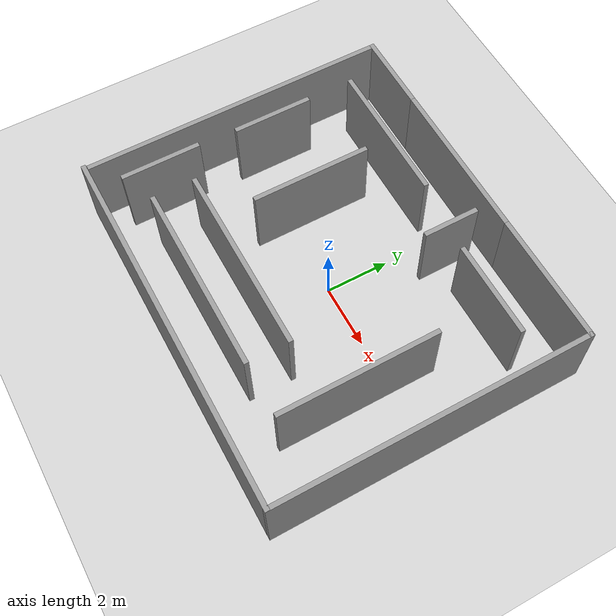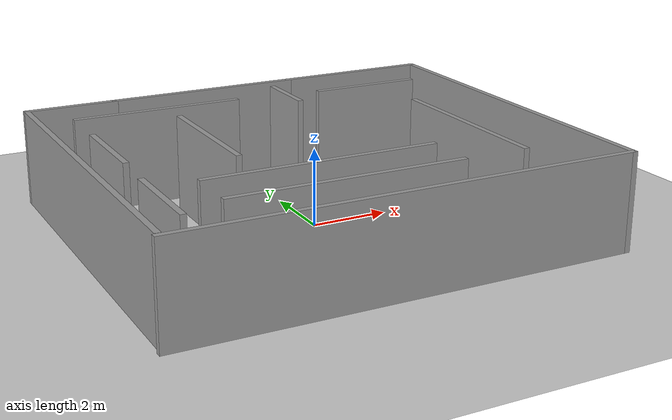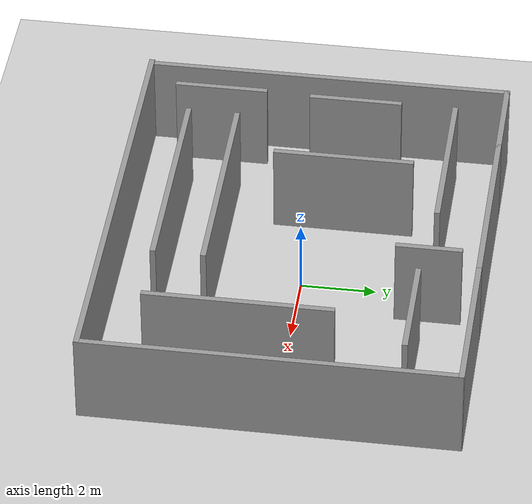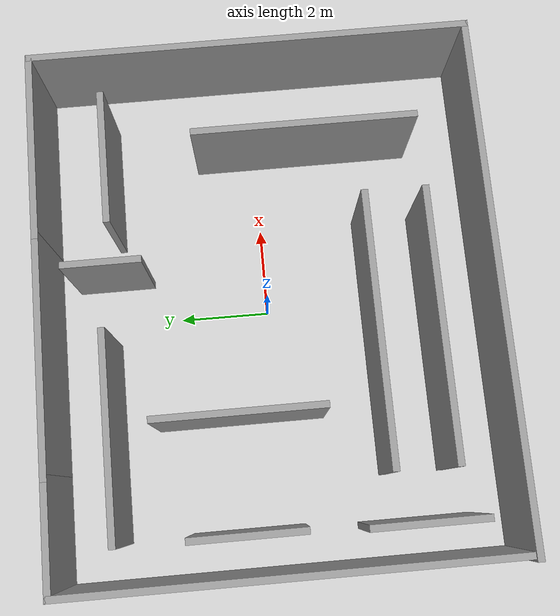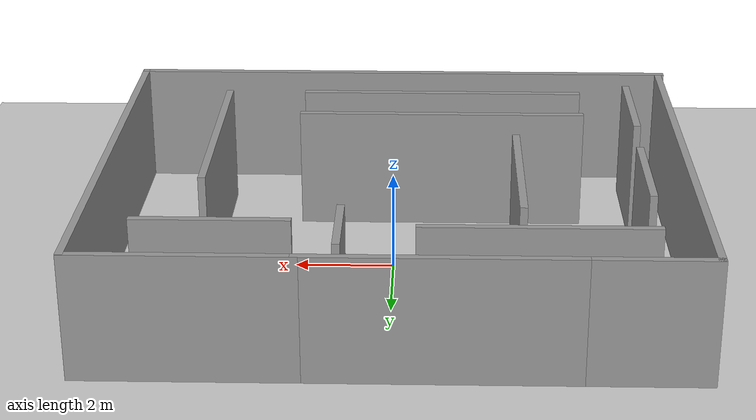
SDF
<sdf version="1.7">
 <world name="default">
  <light name="sun" type="directional">
   <pose>0 0 10 0 -0 0</pose>
   <diffuse>0.8 0.8 0.8 1</diffuse>
   <specular>0.2 0.2 0.2 1</specular>
   <attenuation>
    <range>1000</range>
    <constant>0.9</constant>
    <linear>0.01</linear>
    <quadratic>0.001</quadratic>
   </attenuation>
   <direction>-0.5 0.1 -0.9</direction>
   <spot><inner_angle>0</inner_angle><outer_angle>0</outer_angle><falloff>0</falloff></spot>
  </light>
  <model name="ground_plane">
   <static>1</static>
   <link name="link">
    <collision name="collision">
     <geometry><plane><normal>0 0 1</normal><size>100 100</size></plane></geometry>
     <surface>
      <contact><collide_bitmask>65535</collide_bitmask></contact>
      <friction><ode><mu>100</mu><mu2>50</mu2></ode></friction>
     </surface>
    </collision>
    <visual name="visual">
     <cast_shadows>0</cast_shadows>
     <geometry><plane><normal>0 0 1</normal><size>100 100</size></plane></geometry>
     <material>
      <script><uri>file://media/materials/scripts/gazebo.material</uri><name>Gazebo/Grey</name></script>
     </material>
    </visual>
   </link>
  </model>
  <gravity>0 0 -9.8</gravity>
  <magnetic_field>6e-06 2.3e-05 -4.2e-05</magnetic_field>
  <atmosphere type="adiabatic"/>
  <physics type="ode">
   <max_step_size>0.001</max_step_size>
   <real_time_factor>1</real_time_factor>
   <real_time_update_rate>1000</real_time_update_rate>
  </physics>
  <scene><ambient>0.4 0.4 0.4 1</ambient><background>0.7 0.7 0.7 1</background><shadows>1</shadows></scene>
  <spherical_coordinates>
   <surface_model>EARTH_WGS84</surface_model>
   <latitude_deg>0</latitude_deg>
   <longitude_deg>0</longitude_deg>
   <elevation>0</elevation>
   <heading_deg>0</heading_deg>
  </spherical_coordinates>
  <model name="Labirynt">
   <pose>-0.082292 -0.046956 0 0 -0 0</pose>
   <link name="Wall_10">
    <collision name="Wall_10_Collision">
     <geometry><box><size>4.25 0.15 2.5</size></box></geometry>
     <pose>0 0 1.25 0 -0 0</pose>
    </collision>
    <visual name="Wall_10_Visual">
     <pose>0 0 1.25 0 -0 0</pose>
     <geometry><box><size>4.25 0.15 2.5</size></box></geometry>
     <material>
      <script><uri>file://media/materials/scripts/gazebo.material</uri><name>Gazebo/Grey</name></script>
      <ambient>1 1 1 1</ambient>
     </material>
     <meta><layer>0</layer></meta>
    </visual>
    <pose>3.75225 4.88001 0 0 -0 0</pose>
   </link>
   <link name="Wall_14">
    <collision name="Wall_14_Collision">
     <geometry><box><size>9.89003 0.15 2.5</size></box></geometry>
     <pose>0 0 1.25 0 -0 0</pose>
    </collision>
    <visual name="Wall_14_Visual">
     <pose>0 0 1.25 0 -0 0</pose>
     <geometry><box><size>9.89003 0.15 2.5</size></box></geometry>
     <material>
      <script><uri>file://media/materials/scripts/gazebo.material</uri><name>Gazebo/Grey</name></script>
      <ambient>1 1 1 1</ambient>
     </material>
     <meta><layer>0</layer></meta>
    </visual>
    <pose>5.80575 -0.009993 0 0 -0 -1.5708</pose>
   </link>
   <link name="Wall_15">
    <collision name="Wall_15_Collision">
     <geometry><box><size>11.75 0.15 2.5</size></box></geometry>
     <pose>0 0 1.25 0 -0 0</pose>
    </collision>
    <visual name="Wall_15_Visual">
     <pose>0 0 1.25 0 -0 0</pose>
     <geometry><box><size>11.75 0.15 2.5</size></box></geometry>
     <material>
      <script><uri>file://media/materials/scripts/gazebo.material</uri><name>Gazebo/Grey</name></script>
      <ambient>1 1 1 1</ambient>
     </material>
     <meta><layer>0</layer></meta>
    </visual>
    <pose>-0.00575 -4.87999 0 0 -0 3.14159</pose>
   </link>
   <link name="Wall_22">
    <collision name="Wall_22_Collision">
     <geometry><box><size>5.25 0.15 2.5</size></box></geometry>
     <pose>0 0 1.25 0 -0 0</pose>
    </collision>
    <visual name="Wall_22_Visual">
     <pose>0 0 1.25 0 -0 0</pose>
     <geometry><box><size>5.25 0.15 2.5</size></box></geometry>
     <material>
      <script><uri>file://media/materials/scripts/gazebo.material</uri><name>Gazebo/Grey</name></script>
      <ambient>1 1 1 1</ambient>
     </material>
     <meta><layer>0</layer></meta>
    </visual>
    <pose>-0.84775 4.88001 0 0 -0 3.14159</pose>
   </link>
   <link name="Wall_23">
    <collision name="Wall_23_Collision">
     <geometry><box><size>2.5 0.15 2.5</size></box></geometry>
     <pose>0 0 1.25 0 -0 0</pose>
    </collision>
    <visual name="Wall_23_Visual">
     <pose>0 0 1.25 0 -0 0</pose>
     <geometry><box><size>2.5 0.15 2.5</size></box></geometry>
     <material>
      <script><uri>file://media/materials/scripts/gazebo.material</uri><name>Gazebo/Grey</name></script>
      <ambient>1 1 1 1</ambient>
     </material>
     <meta><layer>0</layer></meta>
    </visual>
    <pose>-4.57275 4.88001 0 0 -0 3.14159</pose>
   </link>
   <link name="Wall_24">
    <collision name="Wall_24_Collision">
     <geometry><box><size>9.75 0.15 2.5</size></box></geometry>
     <pose>0 0 1.25 0 -0 0</pose>
    </collision>
    <visual name="Wall_24_Visual">
     <pose>0 0 1.25 0 -0 0</pose>
     <geometry><box><size>9.75 0.15 2.5</size></box></geometry>
     <material>
      <script><uri>file://media/materials/scripts/gazebo.material</uri><name>Gazebo/Grey</name></script>
      <ambient>1 1 1 1</ambient>
     </material>
     <meta><layer>0</layer></meta>
    </visual>
    <pose>-5.74775 0.080007 0 0 -0 -1.5708</pose>
   </link>
   <link name="Wall_44">
    <collision name="Wall_44_Collision">
     <geometry><box><size>2.5 0.15 2.5</size></box></geometry>
     <pose>0 0 1.25 0 -0 0</pose>
    </collision>
    <visual name="Wall_44_Visual">
     <pose>0 0 1.25 0 -0 0</pose>
     <geometry><box><size>2.5 0.15 2.5</size></box></geometry>
     <material>
      <script><uri>file://media/materials/scripts/gazebo.material</uri><name>Gazebo/Grey</name></script>
      <ambient>1 1 1 1</ambient>
     </material>
     <meta><layer>0</layer></meta>
    </visual>
    <pose>-4.94768 -2.81365 0 0 -0 1.5708</pose>
   </link>
   <link name="Wall_51">
    <collision name="Wall_51_Collision">
     <geometry><box><size>6 0.15 2.5</size></box></geometry>
     <pose>0 0 1.25 0 -0 0</pose>
    </collision>
    <visual name="Wall_51_Visual">
     <pose>0 0 1.25 0 -0 0</pose>
     <geometry><box><size>6 0.15 2.5</size></box></geometry>
     <material>
      <script><uri>file://media/materials/scripts/gazebo.material</uri><name>Gazebo/Grey</name></script>
      <ambient>1 1 1 1</ambient>
     </material>
     <meta><layer>0</layer></meta>
    </visual>
    <pose>-0.895679 -3.55165 0 0 -0 0</pose>
   </link>
   <link name="Wall_56">
    <collision name="Wall_56_Collision">
     <geometry><box><size>6 0.15 2.5</size></box></geometry>
     <pose>0 0 1.25 0 -0 0</pose>
    </collision>
    <visual name="Wall_56_Visual">
     <pose>0 0 1.25 0 -0 0</pose>
     <geometry><box><size>6 0.15 2.5</size></box></geometry>
     <material>
      <script><uri>file://media/materials/scripts/gazebo.material</uri><name>Gazebo/Grey</name></script>
      <ambient>1 1 1 1</ambient>
     </material>
     <meta><layer>0</layer></meta>
    </visual>
    <pose>-0.884179 -2.22915 0 0 -0 0</pose>
   </link>
   <link name="Wall_58">
    <collision name="Wall_58_Collision">
     <geometry><box><size>5 0.15 2.5</size></box></geometry>
     <pose>0 0 1.25 0 -0 0</pose>
    </collision>
    <visual name="Wall_58_Visual">
     <pose>0 0 1.25 0 -0 0</pose>
     <geometry><box><size>5 0.15 2.5</size></box></geometry>
     <material>
      <script><uri>file://media/materials/scripts/gazebo.material</uri><name>Gazebo/Grey</name></script>
      <ambient>1 1 1 1</ambient>
     </material>
     <meta><layer>0</layer></meta>
    </visual>
    <pose>3.75782 -1.08065 0 0 -0 1.5708</pose>
   </link>
   <link name="Wall_62">
    <collision name="Wall_62_Collision">
     <geometry><box><size>2.5 0.15 2.5</size></box></geometry>
     <pose>0 0 1.25 0 -0 0</pose>
    </collision>
    <visual name="Wall_62_Visual">
     <pose>0 0 1.25 0 -0 0</pose>
     <geometry><box><size>2.5 0.15 2.5</size></box></geometry>
     <material>
      <script><uri>file://media/materials/scripts/gazebo.material</uri><name>Gazebo/Grey</name></script>
      <ambient>1 1 1 1</ambient>
     </material>
     <meta><layer>0</layer></meta>
    </visual>
    <pose>-4.87868 0.862349 0 0 -0 -1.5708</pose>
   </link>
   <link name="Wall_64">
    <collision name="Wall_64_Collision">
     <geometry><box><size>4.5 0.15 2.5</size></box></geometry>
     <pose>0 0 1.25 0 -0 0</pose>
    </collision>
    <visual name="Wall_64_Visual">
     <pose>0 0 1.25 0 -0 0</pose>
     <geometry><box><size>4.5 0.15 2.5</size></box></geometry>
     <material>
      <script><uri>file://media/materials/scripts/gazebo.material</uri><name>Gazebo/Grey</name></script>
      <ambient>1 1 1 1</ambient>
     </material>
     <meta><layer>0</layer></meta>
    </visual>
    <pose>-2.65768 3.56685 0 0 -0 0</pose>
   </link>
   <link name="Wall_66">
    <collision name="Wall_66_Collision">
     <geometry><box><size>1.75 0.15 2.5</size></box></geometry>
     <pose>0 0 1.25 0 -0 0</pose>
    </collision>
    <visual name="Wall_66_Visual">
     <pose>0 0 1.25 0 -0 0</pose>
     <geometry><box><size>1.75 0.15 2.5</size></box></geometry>
     <material>
      <script><uri>file://media/materials/scripts/gazebo.material</uri><name>Gazebo/Grey</name></script>
      <ambient>1 1 1 1</ambient>
     </material>
     <meta><layer>0</layer></meta>
    </visual>
    <pose>0.997821 3.51435 0 0 -0 -1.5708</pose>
   </link>
   <link name="Wall_68">
    <collision name="Wall_68_Collision">
     <geometry><box><size>3 0.15 2.5</size></box></geometry>
     <pose>0 0 1.25 0 -0 0</pose>
    </collision>
    <visual name="Wall_68_Visual">
     <pose>0 0 1.25 0 -0 0</pose>
     <geometry><box><size>3 0.15 2.5</size></box></geometry>
     <material>
      <script><uri>file://media/materials/scripts/gazebo.material</uri><name>Gazebo/Grey</name></script>
      <ambient>1 1 1 1</ambient>
     </material>
     <meta><layer>0</layer></meta>
    </visual>
    <pose>3.36582 3.33685 0 0 -0 0</pose>
   </link>
   <link name="Wall_70">
    <collision name="Wall_70_Collision">
     <geometry><box><size>3.75 0.15 2.5</size></box></geometry>
     <pose>0 0 1.25 0 -0 0</pose>
    </collision>
    <visual name="Wall_70_Visual">
     <pose>0 0 1.25 0 -0 0</pose>
     <geometry><box><size>3.75 0.15 2.5</size></box></geometry>
     <material>
      <script><uri>file://media/materials/scripts/gazebo.material</uri><name>Gazebo/Grey</name></script>
      <ambient>1 1 1 1</ambient>
     </material>
     <meta><layer>0</layer></meta>
    </visual>
    <pose>-2.40618 0.846849 0 0 -0 -1.5708</pose>
   </link>
   <static>1</static>
  </model>
 </world>
</sdf>
